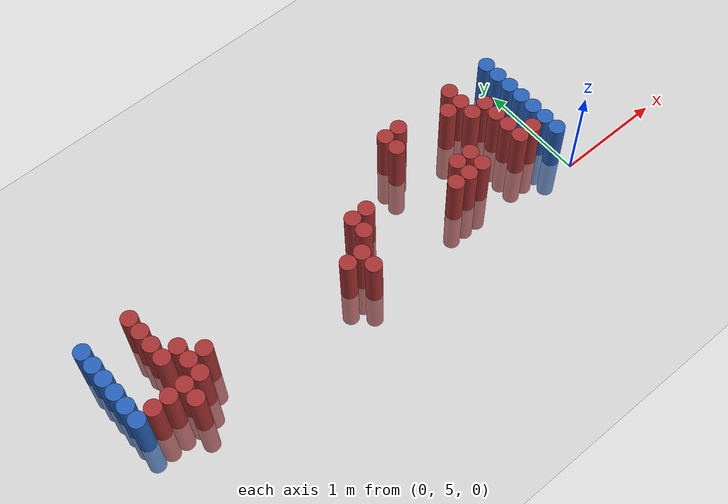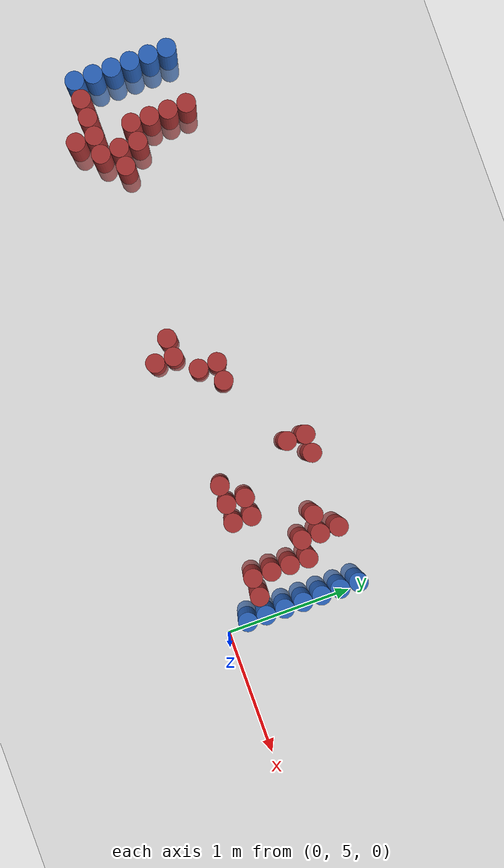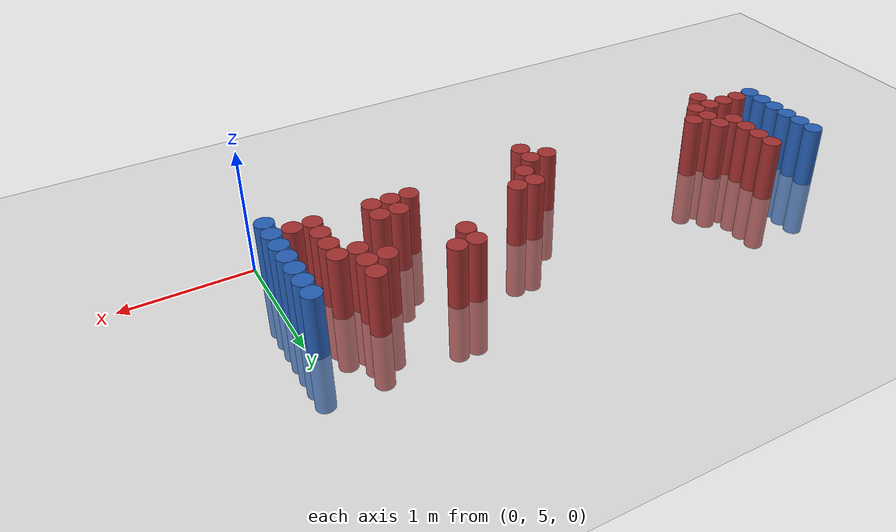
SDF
<sdf version="1.6">
 <world name="default">
  <model name="ground_plane">
   <static>1</static>
   <link name="link">
    <collision name="collision">
     <geometry><plane><normal>0 0 1</normal><size>100 100</size></plane></geometry>
     <surface><friction><ode><mu>100</mu><mu2>50</mu2></ode></friction></surface>
    </collision>
    <visual name="visual">
     <cast_shadows>0</cast_shadows>
     <geometry><plane><normal>0 0 1</normal><size>100 100</size></plane></geometry>
     <material>
      <script><uri>file://media/materials/scripts/gazebo.material</uri><name>Gazebo/Grey</name></script>
     </material>
    </visual>
   </link>
  </model>
  <model name="unit_cylinder_97">
   <static>1</static>
   <pose>-4.425000 5.325000 0.000000 0.000000 0.000000 0.000000</pose>
   <link name="link">
    <inertial>
     <mass>1</mass>
     <inertia><ixx>0.145833</ixx><ixy>0</ixy><ixz>0</ixz><iyy>0.145833</iyy><iyz>0</iyz><izz>0.125</izz></inertia>
    </inertial>
    <collision name="collision">
     <geometry><cylinder><radius>0.075000</radius><length>1</length></cylinder></geometry>
    </collision>
    <visual name="visual">
     <geometry><cylinder><radius>0.075000</radius><length>1</length></cylinder></geometry>
     <material>
      <ambient>0.152000 0.379000 0.720000 1</ambient>
      <diffuse>0.152000 0.379000 0.720000 1</diffuse>
     </material>
     <material>
      <script><name>Gazebo/Grey</name><uri>file://media/materials/scripts/gazebo.material</uri></script>
     </material>
    </visual>
   </link>
  </model>
  <model name="unit_cylinder_98">
   <static>1</static>
   <pose>-4.425000 5.475000 0.000000 0.000000 0.000000 0.000000</pose>
   <link name="link">
    <inertial>
     <mass>1</mass>
     <inertia><ixx>0.145833</ixx><ixy>0</ixy><ixz>0</ixz><iyy>0.145833</iyy><iyz>0</iyz><izz>0.125</izz></inertia>
    </inertial>
    <collision name="collision">
     <geometry><cylinder><radius>0.075000</radius><length>1</length></cylinder></geometry>
    </collision>
    <visual name="visual">
     <geometry><cylinder><radius>0.075000</radius><length>1</length></cylinder></geometry>
     <material>
      <ambient>0.152000 0.379000 0.720000 1</ambient>
      <diffuse>0.152000 0.379000 0.720000 1</diffuse>
     </material>
     <material>
      <script><name>Gazebo/Grey</name><uri>file://media/materials/scripts/gazebo.material</uri></script>
     </material>
    </visual>
   </link>
  </model>
  <model name="unit_cylinder_99">
   <static>1</static>
   <pose>-4.425000 5.625000 0.000000 0.000000 0.000000 0.000000</pose>
   <link name="link">
    <inertial>
     <mass>1</mass>
     <inertia><ixx>0.145833</ixx><ixy>0</ixy><ixz>0</ixz><iyy>0.145833</iyy><iyz>0</iyz><izz>0.125</izz></inertia>
    </inertial>
    <collision name="collision">
     <geometry><cylinder><radius>0.075000</radius><length>1</length></cylinder></geometry>
    </collision>
    <visual name="visual">
     <geometry><cylinder><radius>0.075000</radius><length>1</length></cylinder></geometry>
     <material>
      <ambient>0.152000 0.379000 0.720000 1</ambient>
      <diffuse>0.152000 0.379000 0.720000 1</diffuse>
     </material>
     <material>
      <script><name>Gazebo/Grey</name><uri>file://media/materials/scripts/gazebo.material</uri></script>
     </material>
    </visual>
   </link>
  </model>
  <model name="unit_cylinder_100">
   <static>1</static>
   <pose>-4.425000 5.775000 0.000000 0.000000 0.000000 0.000000</pose>
   <link name="link">
    <inertial>
     <mass>1</mass>
     <inertia><ixx>0.145833</ixx><ixy>0</ixy><ixz>0</ixz><iyy>0.145833</iyy><iyz>0</iyz><izz>0.125</izz></inertia>
    </inertial>
    <collision name="collision">
     <geometry><cylinder><radius>0.075000</radius><length>1</length></cylinder></geometry>
    </collision>
    <visual name="visual">
     <geometry><cylinder><radius>0.075000</radius><length>1</length></cylinder></geometry>
     <material>
      <ambient>0.152000 0.379000 0.720000 1</ambient>
      <diffuse>0.152000 0.379000 0.720000 1</diffuse>
     </material>
     <material>
      <script><name>Gazebo/Grey</name><uri>file://media/materials/scripts/gazebo.material</uri></script>
     </material>
    </visual>
   </link>
  </model>
  <model name="unit_cylinder_101">
   <static>1</static>
   <pose>-4.425000 5.925000 0.000000 0.000000 0.000000 0.000000</pose>
   <link name="link">
    <inertial>
     <mass>1</mass>
     <inertia><ixx>0.145833</ixx><ixy>0</ixy><ixz>0</ixz><iyy>0.145833</iyy><iyz>0</iyz><izz>0.125</izz></inertia>
    </inertial>
    <collision name="collision">
     <geometry><cylinder><radius>0.075000</radius><length>1</length></cylinder></geometry>
    </collision>
    <visual name="visual">
     <geometry><cylinder><radius>0.075000</radius><length>1</length></cylinder></geometry>
     <material>
      <ambient>0.152000 0.379000 0.720000 1</ambient>
      <diffuse>0.152000 0.379000 0.720000 1</diffuse>
     </material>
     <material>
      <script><name>Gazebo/Grey</name><uri>file://media/materials/scripts/gazebo.material</uri></script>
     </material>
    </visual>
   </link>
  </model>
  <model name="unit_cylinder_102">
   <static>1</static>
   <pose>-4.425000 6.075000 0.000000 0.000000 0.000000 0.000000</pose>
   <link name="link">
    <inertial>
     <mass>1</mass>
     <inertia><ixx>0.145833</ixx><ixy>0</ixy><ixz>0</ixz><iyy>0.145833</iyy><iyz>0</iyz><izz>0.125</izz></inertia>
    </inertial>
    <collision name="collision">
     <geometry><cylinder><radius>0.075000</radius><length>1</length></cylinder></geometry>
    </collision>
    <visual name="visual">
     <geometry><cylinder><radius>0.075000</radius><length>1</length></cylinder></geometry>
     <material>
      <ambient>0.152000 0.379000 0.720000 1</ambient>
      <diffuse>0.152000 0.379000 0.720000 1</diffuse>
     </material>
     <material>
      <script><name>Gazebo/Grey</name><uri>file://media/materials/scripts/gazebo.material</uri></script>
     </material>
    </visual>
   </link>
  </model>
  <model name="unit_cylinder_126">
   <static>1</static>
   <pose>-4.275000 5.325000 0.000000 0.000000 0.000000 0.000000</pose>
   <link name="link">
    <inertial>
     <mass>1</mass>
     <inertia><ixx>0.145833</ixx><ixy>0</ixy><ixz>0</ixz><iyy>0.145833</iyy><iyz>0</iyz><izz>0.125</izz></inertia>
    </inertial>
    <collision name="collision">
     <geometry><cylinder><radius>0.075000</radius><length>1</length></cylinder></geometry>
    </collision>
    <visual name="visual">
     <geometry><cylinder><radius>0.075000</radius><length>1</length></cylinder></geometry>
     <material>
      <ambient>0.648000 0.192000 0.192000 1</ambient>
      <diffuse>0.648000 0.192000 0.192000 1</diffuse>
     </material>
     <material>
      <script><name>Gazebo/Grey</name><uri>file://media/materials/scripts/gazebo.material</uri></script>
     </material>
    </visual>
   </link>
  </model>
  <model name="unit_cylinder_141">
   <static>1</static>
   <pose>-4.125000 5.325000 0.000000 0.000000 0.000000 0.000000</pose>
   <link name="link">
    <inertial>
     <mass>1</mass>
     <inertia><ixx>0.145833</ixx><ixy>0</ixy><ixz>0</ixz><iyy>0.145833</iyy><iyz>0</iyz><izz>0.125</izz></inertia>
    </inertial>
    <collision name="collision">
     <geometry><cylinder><radius>0.075000</radius><length>1</length></cylinder></geometry>
    </collision>
    <visual name="visual">
     <geometry><cylinder><radius>0.075000</radius><length>1</length></cylinder></geometry>
     <material>
      <ambient>0.648000 0.192000 0.192000 1</ambient>
      <diffuse>0.648000 0.192000 0.192000 1</diffuse>
     </material>
     <material>
      <script><name>Gazebo/Grey</name><uri>file://media/materials/scripts/gazebo.material</uri></script>
     </material>
    </visual>
   </link>
  </model>
  <model name="unit_cylinder_149">
   <static>1</static>
   <pose>-3.975000 5.175000 0.000000 0.000000 0.000000 0.000000</pose>
   <link name="link">
    <inertial>
     <mass>1</mass>
     <inertia><ixx>0.145833</ixx><ixy>0</ixy><ixz>0</ixz><iyy>0.145833</iyy><iyz>0</iyz><izz>0.125</izz></inertia>
    </inertial>
    <collision name="collision">
     <geometry><cylinder><radius>0.075000</radius><length>1</length></cylinder></geometry>
    </collision>
    <visual name="visual">
     <geometry><cylinder><radius>0.075000</radius><length>1</length></cylinder></geometry>
     <material>
      <ambient>0.648000 0.192000 0.192000 1</ambient>
      <diffuse>0.648000 0.192000 0.192000 1</diffuse>
     </material>
     <material>
      <script><name>Gazebo/Grey</name><uri>file://media/materials/scripts/gazebo.material</uri></script>
     </material>
    </visual>
   </link>
  </model>
  <model name="unit_cylinder_150">
   <static>1</static>
   <pose>-3.975000 5.325000 0.000000 0.000000 0.000000 0.000000</pose>
   <link name="link">
    <inertial>
     <mass>1</mass>
     <inertia><ixx>0.145833</ixx><ixy>0</ixy><ixz>0</ixz><iyy>0.145833</iyy><iyz>0</iyz><izz>0.125</izz></inertia>
    </inertial>
    <collision name="collision">
     <geometry><cylinder><radius>0.075000</radius><length>1</length></cylinder></geometry>
    </collision>
    <visual name="visual">
     <geometry><cylinder><radius>0.075000</radius><length>1</length></cylinder></geometry>
     <material>
      <ambient>0.648000 0.192000 0.192000 1</ambient>
      <diffuse>0.648000 0.192000 0.192000 1</diffuse>
     </material>
     <material>
      <script><name>Gazebo/Grey</name><uri>file://media/materials/scripts/gazebo.material</uri></script>
     </material>
    </visual>
   </link>
  </model>
  <model name="unit_cylinder_151">
   <static>1</static>
   <pose>-3.975000 5.625000 0.000000 0.000000 0.000000 0.000000</pose>
   <link name="link">
    <inertial>
     <mass>1</mass>
     <inertia><ixx>0.145833</ixx><ixy>0</ixy><ixz>0</ixz><iyy>0.145833</iyy><iyz>0</iyz><izz>0.125</izz></inertia>
    </inertial>
    <collision name="collision">
     <geometry><cylinder><radius>0.075000</radius><length>1</length></cylinder></geometry>
    </collision>
    <visual name="visual">
     <geometry><cylinder><radius>0.075000</radius><length>1</length></cylinder></geometry>
     <material>
      <ambient>0.648000 0.192000 0.192000 1</ambient>
      <diffuse>0.648000 0.192000 0.192000 1</diffuse>
     </material>
     <material>
      <script><name>Gazebo/Grey</name><uri>file://media/materials/scripts/gazebo.material</uri></script>
     </material>
    </visual>
   </link>
  </model>
  <model name="unit_cylinder_152">
   <static>1</static>
   <pose>-3.975000 5.775000 0.000000 0.000000 0.000000 0.000000</pose>
   <link name="link">
    <inertial>
     <mass>1</mass>
     <inertia><ixx>0.145833</ixx><ixy>0</ixy><ixz>0</ixz><iyy>0.145833</iyy><iyz>0</iyz><izz>0.125</izz></inertia>
    </inertial>
    <collision name="collision">
     <geometry><cylinder><radius>0.075000</radius><length>1</length></cylinder></geometry>
    </collision>
    <visual name="visual">
     <geometry><cylinder><radius>0.075000</radius><length>1</length></cylinder></geometry>
     <material>
      <ambient>0.648000 0.192000 0.192000 1</ambient>
      <diffuse>0.648000 0.192000 0.192000 1</diffuse>
     </material>
     <material>
      <script><name>Gazebo/Grey</name><uri>file://media/materials/scripts/gazebo.material</uri></script>
     </material>
    </visual>
   </link>
  </model>
  <model name="unit_cylinder_153">
   <static>1</static>
   <pose>-3.975000 5.925000 0.000000 0.000000 0.000000 0.000000</pose>
   <link name="link">
    <inertial>
     <mass>1</mass>
     <inertia><ixx>0.145833</ixx><ixy>0</ixy><ixz>0</ixz><iyy>0.145833</iyy><iyz>0</iyz><izz>0.125</izz></inertia>
    </inertial>
    <collision name="collision">
     <geometry><cylinder><radius>0.075000</radius><length>1</length></cylinder></geometry>
    </collision>
    <visual name="visual">
     <geometry><cylinder><radius>0.075000</radius><length>1</length></cylinder></geometry>
     <material>
      <ambient>0.648000 0.192000 0.192000 1</ambient>
      <diffuse>0.648000 0.192000 0.192000 1</diffuse>
     </material>
     <material>
      <script><name>Gazebo/Grey</name><uri>file://media/materials/scripts/gazebo.material</uri></script>
     </material>
    </visual>
   </link>
  </model>
  <model name="unit_cylinder_154">
   <static>1</static>
   <pose>-3.975000 6.075000 0.000000 0.000000 0.000000 0.000000</pose>
   <link name="link">
    <inertial>
     <mass>1</mass>
     <inertia><ixx>0.145833</ixx><ixy>0</ixy><ixz>0</ixz><iyy>0.145833</iyy><iyz>0</iyz><izz>0.125</izz></inertia>
    </inertial>
    <collision name="collision">
     <geometry><cylinder><radius>0.075000</radius><length>1</length></cylinder></geometry>
    </collision>
    <visual name="visual">
     <geometry><cylinder><radius>0.075000</radius><length>1</length></cylinder></geometry>
     <material>
      <ambient>0.648000 0.192000 0.192000 1</ambient>
      <diffuse>0.648000 0.192000 0.192000 1</diffuse>
     </material>
     <material>
      <script><name>Gazebo/Grey</name><uri>file://media/materials/scripts/gazebo.material</uri></script>
     </material>
    </visual>
   </link>
  </model>
  <model name="unit_cylinder_162">
   <static>1</static>
   <pose>-3.825000 5.325000 0.000000 0.000000 0.000000 0.000000</pose>
   <link name="link">
    <inertial>
     <mass>1</mass>
     <inertia><ixx>0.145833</ixx><ixy>0</ixy><ixz>0</ixz><iyy>0.145833</iyy><iyz>0</iyz><izz>0.125</izz></inertia>
    </inertial>
    <collision name="collision">
     <geometry><cylinder><radius>0.075000</radius><length>1</length></cylinder></geometry>
    </collision>
    <visual name="visual">
     <geometry><cylinder><radius>0.075000</radius><length>1</length></cylinder></geometry>
     <material>
      <ambient>0.648000 0.192000 0.192000 1</ambient>
      <diffuse>0.648000 0.192000 0.192000 1</diffuse>
     </material>
     <material>
      <script><name>Gazebo/Grey</name><uri>file://media/materials/scripts/gazebo.material</uri></script>
     </material>
    </visual>
   </link>
  </model>
  <model name="unit_cylinder_163">
   <static>1</static>
   <pose>-3.825000 5.475000 0.000000 0.000000 0.000000 0.000000</pose>
   <link name="link">
    <inertial>
     <mass>1</mass>
     <inertia><ixx>0.145833</ixx><ixy>0</ixy><ixz>0</ixz><iyy>0.145833</iyy><iyz>0</iyz><izz>0.125</izz></inertia>
    </inertial>
    <collision name="collision">
     <geometry><cylinder><radius>0.075000</radius><length>1</length></cylinder></geometry>
    </collision>
    <visual name="visual">
     <geometry><cylinder><radius>0.075000</radius><length>1</length></cylinder></geometry>
     <material>
      <ambient>0.648000 0.192000 0.192000 1</ambient>
      <diffuse>0.648000 0.192000 0.192000 1</diffuse>
     </material>
     <material>
      <script><name>Gazebo/Grey</name><uri>file://media/materials/scripts/gazebo.material</uri></script>
     </material>
    </visual>
   </link>
  </model>
  <model name="unit_cylinder_164">
   <static>1</static>
   <pose>-3.825000 5.625000 0.000000 0.000000 0.000000 0.000000</pose>
   <link name="link">
    <inertial>
     <mass>1</mass>
     <inertia><ixx>0.145833</ixx><ixy>0</ixy><ixz>0</ixz><iyy>0.145833</iyy><iyz>0</iyz><izz>0.125</izz></inertia>
    </inertial>
    <collision name="collision">
     <geometry><cylinder><radius>0.075000</radius><length>1</length></cylinder></geometry>
    </collision>
    <visual name="visual">
     <geometry><cylinder><radius>0.075000</radius><length>1</length></cylinder></geometry>
     <material>
      <ambient>0.648000 0.192000 0.192000 1</ambient>
      <diffuse>0.648000 0.192000 0.192000 1</diffuse>
     </material>
     <material>
      <script><name>Gazebo/Grey</name><uri>file://media/materials/scripts/gazebo.material</uri></script>
     </material>
    </visual>
   </link>
  </model>
  <model name="unit_cylinder_169">
   <static>1</static>
   <pose>-3.675000 5.475000 0.000000 0.000000 0.000000 0.000000</pose>
   <link name="link">
    <inertial>
     <mass>1</mass>
     <inertia><ixx>0.145833</ixx><ixy>0</ixy><ixz>0</ixz><iyy>0.145833</iyy><iyz>0</iyz><izz>0.125</izz></inertia>
    </inertial>
    <collision name="collision">
     <geometry><cylinder><radius>0.075000</radius><length>1</length></cylinder></geometry>
    </collision>
    <visual name="visual">
     <geometry><cylinder><radius>0.075000</radius><length>1</length></cylinder></geometry>
     <material>
      <ambient>0.648000 0.192000 0.192000 1</ambient>
      <diffuse>0.648000 0.192000 0.192000 1</diffuse>
     </material>
     <material>
      <script><name>Gazebo/Grey</name><uri>file://media/materials/scripts/gazebo.material</uri></script>
     </material>
    </visual>
   </link>
  </model>
  <model name="unit_cylinder_204">
   <static>1</static>
   <pose>-2.325000 5.325000 0.000000 0.000000 0.000000 0.000000</pose>
   <link name="link">
    <inertial>
     <mass>1</mass>
     <inertia><ixx>0.145833</ixx><ixy>0</ixy><ixz>0</ixz><iyy>0.145833</iyy><iyz>0</iyz><izz>0.125</izz></inertia>
    </inertial>
    <collision name="collision">
     <geometry><cylinder><radius>0.075000</radius><length>1</length></cylinder></geometry>
    </collision>
    <visual name="visual">
     <geometry><cylinder><radius>0.075000</radius><length>1</length></cylinder></geometry>
     <material>
      <ambient>0.648000 0.192000 0.192000 1</ambient>
      <diffuse>0.648000 0.192000 0.192000 1</diffuse>
     </material>
     <material>
      <script><name>Gazebo/Grey</name><uri>file://media/materials/scripts/gazebo.material</uri></script>
     </material>
    </visual>
   </link>
  </model>
  <model name="unit_cylinder_205">
   <static>1</static>
   <pose>-2.175000 5.175000 0.000000 0.000000 0.000000 0.000000</pose>
   <link name="link">
    <inertial>
     <mass>1</mass>
     <inertia><ixx>0.145833</ixx><ixy>0</ixy><ixz>0</ixz><iyy>0.145833</iyy><iyz>0</iyz><izz>0.125</izz></inertia>
    </inertial>
    <collision name="collision">
     <geometry><cylinder><radius>0.075000</radius><length>1</length></cylinder></geometry>
    </collision>
    <visual name="visual">
     <geometry><cylinder><radius>0.075000</radius><length>1</length></cylinder></geometry>
     <material>
      <ambient>0.648000 0.192000 0.192000 1</ambient>
      <diffuse>0.648000 0.192000 0.192000 1</diffuse>
     </material>
     <material>
      <script><name>Gazebo/Grey</name><uri>file://media/materials/scripts/gazebo.material</uri></script>
     </material>
    </visual>
   </link>
  </model>
  <model name="unit_cylinder_206">
   <static>1</static>
   <pose>-2.175000 5.325000 0.000000 0.000000 0.000000 0.000000</pose>
   <link name="link">
    <inertial>
     <mass>1</mass>
     <inertia><ixx>0.145833</ixx><ixy>0</ixy><ixz>0</ixz><iyy>0.145833</iyy><iyz>0</iyz><izz>0.125</izz></inertia>
    </inertial>
    <collision name="collision">
     <geometry><cylinder><radius>0.075000</radius><length>1</length></cylinder></geometry>
    </collision>
    <visual name="visual">
     <geometry><cylinder><radius>0.075000</radius><length>1</length></cylinder></geometry>
     <material>
      <ambient>0.648000 0.192000 0.192000 1</ambient>
      <diffuse>0.648000 0.192000 0.192000 1</diffuse>
     </material>
     <material>
      <script><name>Gazebo/Grey</name><uri>file://media/materials/scripts/gazebo.material</uri></script>
     </material>
    </visual>
   </link>
  </model>
  <model name="unit_cylinder_208">
   <static>1</static>
   <pose>-2.025000 5.475000 0.000000 0.000000 0.000000 0.000000</pose>
   <link name="link">
    <inertial>
     <mass>1</mass>
     <inertia><ixx>0.145833</ixx><ixy>0</ixy><ixz>0</ixz><iyy>0.145833</iyy><iyz>0</iyz><izz>0.125</izz></inertia>
    </inertial>
    <collision name="collision">
     <geometry><cylinder><radius>0.075000</radius><length>1</length></cylinder></geometry>
    </collision>
    <visual name="visual">
     <geometry><cylinder><radius>0.075000</radius><length>1</length></cylinder></geometry>
     <material>
      <ambient>0.648000 0.192000 0.192000 1</ambient>
      <diffuse>0.648000 0.192000 0.192000 1</diffuse>
     </material>
     <material>
      <script><name>Gazebo/Grey</name><uri>file://media/materials/scripts/gazebo.material</uri></script>
     </material>
    </visual>
   </link>
  </model>
  <model name="unit_cylinder_209">
   <static>1</static>
   <pose>-2.025000 5.625000 0.000000 0.000000 0.000000 0.000000</pose>
   <link name="link">
    <inertial>
     <mass>1</mass>
     <inertia><ixx>0.145833</ixx><ixy>0</ixy><ixz>0</ixz><iyy>0.145833</iyy><iyz>0</iyz><izz>0.125</izz></inertia>
    </inertial>
    <collision name="collision">
     <geometry><cylinder><radius>0.075000</radius><length>1</length></cylinder></geometry>
    </collision>
    <visual name="visual">
     <geometry><cylinder><radius>0.075000</radius><length>1</length></cylinder></geometry>
     <material>
      <ambient>0.648000 0.192000 0.192000 1</ambient>
      <diffuse>0.648000 0.192000 0.192000 1</diffuse>
     </material>
     <material>
      <script><name>Gazebo/Grey</name><uri>file://media/materials/scripts/gazebo.material</uri></script>
     </material>
    </visual>
   </link>
  </model>
  <model name="unit_cylinder_212">
   <static>1</static>
   <pose>-1.875000 5.625000 0.000000 0.000000 0.000000 0.000000</pose>
   <link name="link">
    <inertial>
     <mass>1</mass>
     <inertia><ixx>0.145833</ixx><ixy>0</ixy><ixz>0</ixz><iyy>0.145833</iyy><iyz>0</iyz><izz>0.125</izz></inertia>
    </inertial>
    <collision name="collision">
     <geometry><cylinder><radius>0.075000</radius><length>1</length></cylinder></geometry>
    </collision>
    <visual name="visual">
     <geometry><cylinder><radius>0.075000</radius><length>1</length></cylinder></geometry>
     <material>
      <ambient>0.648000 0.192000 0.192000 1</ambient>
      <diffuse>0.648000 0.192000 0.192000 1</diffuse>
     </material>
     <material>
      <script><name>Gazebo/Grey</name><uri>file://media/materials/scripts/gazebo.material</uri></script>
     </material>
    </visual>
   </link>
  </model>
  <model name="unit_cylinder_217">
   <static>1</static>
   <pose>-1.275000 5.925000 0.000000 0.000000 0.000000 0.000000</pose>
   <link name="link">
    <inertial>
     <mass>1</mass>
     <inertia><ixx>0.145833</ixx><ixy>0</ixy><ixz>0</ixz><iyy>0.145833</iyy><iyz>0</iyz><izz>0.125</izz></inertia>
    </inertial>
    <collision name="collision">
     <geometry><cylinder><radius>0.075000</radius><length>1</length></cylinder></geometry>
    </collision>
    <visual name="visual">
     <geometry><cylinder><radius>0.075000</radius><length>1</length></cylinder></geometry>
     <material>
      <ambient>0.648000 0.192000 0.192000 1</ambient>
      <diffuse>0.648000 0.192000 0.192000 1</diffuse>
     </material>
     <material>
      <script><name>Gazebo/Grey</name><uri>file://media/materials/scripts/gazebo.material</uri></script>
     </material>
    </visual>
   </link>
  </model>
  <model name="unit_cylinder_218">
   <static>1</static>
   <pose>-1.275000 6.075000 0.000000 0.000000 0.000000 0.000000</pose>
   <link name="link">
    <inertial>
     <mass>1</mass>
     <inertia><ixx>0.145833</ixx><ixy>0</ixy><ixz>0</ixz><iyy>0.145833</iyy><iyz>0</iyz><izz>0.125</izz></inertia>
    </inertial>
    <collision name="collision">
     <geometry><cylinder><radius>0.075000</radius><length>1</length></cylinder></geometry>
    </collision>
    <visual name="visual">
     <geometry><cylinder><radius>0.075000</radius><length>1</length></cylinder></geometry>
     <material>
      <ambient>0.648000 0.192000 0.192000 1</ambient>
      <diffuse>0.648000 0.192000 0.192000 1</diffuse>
     </material>
     <material>
      <script><name>Gazebo/Grey</name><uri>file://media/materials/scripts/gazebo.material</uri></script>
     </material>
    </visual>
   </link>
  </model>
  <model name="unit_cylinder_220">
   <static>1</static>
   <pose>-1.125000 5.325000 0.000000 0.000000 0.000000 0.000000</pose>
   <link name="link">
    <inertial>
     <mass>1</mass>
     <inertia><ixx>0.145833</ixx><ixy>0</ixy><ixz>0</ixz><iyy>0.145833</iyy><iyz>0</iyz><izz>0.125</izz></inertia>
    </inertial>
    <collision name="collision">
     <geometry><cylinder><radius>0.075000</radius><length>1</length></cylinder></geometry>
    </collision>
    <visual name="visual">
     <geometry><cylinder><radius>0.075000</radius><length>1</length></cylinder></geometry>
     <material>
      <ambient>0.648000 0.192000 0.192000 1</ambient>
      <diffuse>0.648000 0.192000 0.192000 1</diffuse>
     </material>
     <material>
      <script><name>Gazebo/Grey</name><uri>file://media/materials/scripts/gazebo.material</uri></script>
     </material>
    </visual>
   </link>
  </model>
  <model name="unit_cylinder_221">
   <static>1</static>
   <pose>-1.125000 6.075000 0.000000 0.000000 0.000000 0.000000</pose>
   <link name="link">
    <inertial>
     <mass>1</mass>
     <inertia><ixx>0.145833</ixx><ixy>0</ixy><ixz>0</ixz><iyy>0.145833</iyy><iyz>0</iyz><izz>0.125</izz></inertia>
    </inertial>
    <collision name="collision">
     <geometry><cylinder><radius>0.075000</radius><length>1</length></cylinder></geometry>
    </collision>
    <visual name="visual">
     <geometry><cylinder><radius>0.075000</radius><length>1</length></cylinder></geometry>
     <material>
      <ambient>0.648000 0.192000 0.192000 1</ambient>
      <diffuse>0.648000 0.192000 0.192000 1</diffuse>
     </material>
     <material>
      <script><name>Gazebo/Grey</name><uri>file://media/materials/scripts/gazebo.material</uri></script>
     </material>
    </visual>
   </link>
  </model>
  <model name="unit_cylinder_222">
   <static>1</static>
   <pose>-0.975000 5.325000 0.000000 0.000000 0.000000 0.000000</pose>
   <link name="link">
    <inertial>
     <mass>1</mass>
     <inertia><ixx>0.145833</ixx><ixy>0</ixy><ixz>0</ixz><iyy>0.145833</iyy><iyz>0</iyz><izz>0.125</izz></inertia>
    </inertial>
    <collision name="collision">
     <geometry><cylinder><radius>0.075000</radius><length>1</length></cylinder></geometry>
    </collision>
    <visual name="visual">
     <geometry><cylinder><radius>0.075000</radius><length>1</length></cylinder></geometry>
     <material>
      <ambient>0.648000 0.192000 0.192000 1</ambient>
      <diffuse>0.648000 0.192000 0.192000 1</diffuse>
     </material>
     <material>
      <script><name>Gazebo/Grey</name><uri>file://media/materials/scripts/gazebo.material</uri></script>
     </material>
    </visual>
   </link>
  </model>
  <model name="unit_cylinder_223">
   <static>1</static>
   <pose>-0.975000 5.475000 0.000000 0.000000 0.000000 0.000000</pose>
   <link name="link">
    <inertial>
     <mass>1</mass>
     <inertia><ixx>0.145833</ixx><ixy>0</ixy><ixz>0</ixz><iyy>0.145833</iyy><iyz>0</iyz><izz>0.125</izz></inertia>
    </inertial>
    <collision name="collision">
     <geometry><cylinder><radius>0.075000</radius><length>1</length></cylinder></geometry>
    </collision>
    <visual name="visual">
     <geometry><cylinder><radius>0.075000</radius><length>1</length></cylinder></geometry>
     <material>
      <ambient>0.648000 0.192000 0.192000 1</ambient>
      <diffuse>0.648000 0.192000 0.192000 1</diffuse>
     </material>
     <material>
      <script><name>Gazebo/Grey</name><uri>file://media/materials/scripts/gazebo.material</uri></script>
     </material>
    </visual>
   </link>
  </model>
  <model name="unit_cylinder_226">
   <static>1</static>
   <pose>-0.825000 5.325000 0.000000 0.000000 0.000000 0.000000</pose>
   <link name="link">
    <inertial>
     <mass>1</mass>
     <inertia><ixx>0.145833</ixx><ixy>0</ixy><ixz>0</ixz><iyy>0.145833</iyy><iyz>0</iyz><izz>0.125</izz></inertia>
    </inertial>
    <collision name="collision">
     <geometry><cylinder><radius>0.075000</radius><length>1</length></cylinder></geometry>
    </collision>
    <visual name="visual">
     <geometry><cylinder><radius>0.075000</radius><length>1</length></cylinder></geometry>
     <material>
      <ambient>0.648000 0.192000 0.192000 1</ambient>
      <diffuse>0.648000 0.192000 0.192000 1</diffuse>
     </material>
     <material>
      <script><name>Gazebo/Grey</name><uri>file://media/materials/scripts/gazebo.material</uri></script>
     </material>
    </visual>
   </link>
  </model>
  <model name="unit_cylinder_227">
   <static>1</static>
   <pose>-0.825000 5.475000 0.000000 0.000000 0.000000 0.000000</pose>
   <link name="link">
    <inertial>
     <mass>1</mass>
     <inertia><ixx>0.145833</ixx><ixy>0</ixy><ixz>0</ixz><iyy>0.145833</iyy><iyz>0</iyz><izz>0.125</izz></inertia>
    </inertial>
    <collision name="collision">
     <geometry><cylinder><radius>0.075000</radius><length>1</length></cylinder></geometry>
    </collision>
    <visual name="visual">
     <geometry><cylinder><radius>0.075000</radius><length>1</length></cylinder></geometry>
     <material>
      <ambient>0.648000 0.192000 0.192000 1</ambient>
      <diffuse>0.648000 0.192000 0.192000 1</diffuse>
     </material>
     <material>
      <script><name>Gazebo/Grey</name><uri>file://media/materials/scripts/gazebo.material</uri></script>
     </material>
    </visual>
   </link>
  </model>
  <model name="unit_cylinder_231">
   <static>1</static>
   <pose>-0.675000 5.925000 0.000000 0.000000 0.000000 0.000000</pose>
   <link name="link">
    <inertial>
     <mass>1</mass>
     <inertia><ixx>0.145833</ixx><ixy>0</ixy><ixz>0</ixz><iyy>0.145833</iyy><iyz>0</iyz><izz>0.125</izz></inertia>
    </inertial>
    <collision name="collision">
     <geometry><cylinder><radius>0.075000</radius><length>1</length></cylinder></geometry>
    </collision>
    <visual name="visual">
     <geometry><cylinder><radius>0.075000</radius><length>1</length></cylinder></geometry>
     <material>
      <ambient>0.648000 0.192000 0.192000 1</ambient>
      <diffuse>0.648000 0.192000 0.192000 1</diffuse>
     </material>
     <material>
      <script><name>Gazebo/Grey</name><uri>file://media/materials/scripts/gazebo.material</uri></script>
     </material>
    </visual>
   </link>
  </model>
  <model name="unit_cylinder_235">
   <static>1</static>
   <pose>-0.525000 5.775000 0.000000 0.000000 0.000000 0.000000</pose>
   <link name="link">
    <inertial>
     <mass>1</mass>
     <inertia><ixx>0.145833</ixx><ixy>0</ixy><ixz>0</ixz><iyy>0.145833</iyy><iyz>0</iyz><izz>0.125</izz></inertia>
    </inertial>
    <collision name="collision">
     <geometry><cylinder><radius>0.075000</radius><length>1</length></cylinder></geometry>
    </collision>
    <visual name="visual">
     <geometry><cylinder><radius>0.075000</radius><length>1</length></cylinder></geometry>
     <material>
      <ambient>0.648000 0.192000 0.192000 1</ambient>
      <diffuse>0.648000 0.192000 0.192000 1</diffuse>
     </material>
     <material>
      <script><name>Gazebo/Grey</name><uri>file://media/materials/scripts/gazebo.material</uri></script>
     </material>
    </visual>
   </link>
  </model>
  <model name="unit_cylinder_236">
   <static>1</static>
   <pose>-0.525000 5.925000 0.000000 0.000000 0.000000 0.000000</pose>
   <link name="link">
    <inertial>
     <mass>1</mass>
     <inertia><ixx>0.145833</ixx><ixy>0</ixy><ixz>0</ixz><iyy>0.145833</iyy><iyz>0</iyz><izz>0.125</izz></inertia>
    </inertial>
    <collision name="collision">
     <geometry><cylinder><radius>0.075000</radius><length>1</length></cylinder></geometry>
    </collision>
    <visual name="visual">
     <geometry><cylinder><radius>0.075000</radius><length>1</length></cylinder></geometry>
     <material>
      <ambient>0.648000 0.192000 0.192000 1</ambient>
      <diffuse>0.648000 0.192000 0.192000 1</diffuse>
     </material>
     <material>
      <script><name>Gazebo/Grey</name><uri>file://media/materials/scripts/gazebo.material</uri></script>
     </material>
    </visual>
   </link>
  </model>
  <model name="unit_cylinder_237">
   <static>1</static>
   <pose>-0.525000 6.075000 0.000000 0.000000 0.000000 0.000000</pose>
   <link name="link">
    <inertial>
     <mass>1</mass>
     <inertia><ixx>0.145833</ixx><ixy>0</ixy><ixz>0</ixz><iyy>0.145833</iyy><iyz>0</iyz><izz>0.125</izz></inertia>
    </inertial>
    <collision name="collision">
     <geometry><cylinder><radius>0.075000</radius><length>1</length></cylinder></geometry>
    </collision>
    <visual name="visual">
     <geometry><cylinder><radius>0.075000</radius><length>1</length></cylinder></geometry>
     <material>
      <ambient>0.648000 0.192000 0.192000 1</ambient>
      <diffuse>0.648000 0.192000 0.192000 1</diffuse>
     </material>
     <material>
      <script><name>Gazebo/Grey</name><uri>file://media/materials/scripts/gazebo.material</uri></script>
     </material>
    </visual>
   </link>
  </model>
  <model name="unit_cylinder_242">
   <static>1</static>
   <pose>-0.375000 5.325000 0.000000 0.000000 0.000000 0.000000</pose>
   <link name="link">
    <inertial>
     <mass>1</mass>
     <inertia><ixx>0.145833</ixx><ixy>0</ixy><ixz>0</ixz><iyy>0.145833</iyy><iyz>0</iyz><izz>0.125</izz></inertia>
    </inertial>
    <collision name="collision">
     <geometry><cylinder><radius>0.075000</radius><length>1</length></cylinder></geometry>
    </collision>
    <visual name="visual">
     <geometry><cylinder><radius>0.075000</radius><length>1</length></cylinder></geometry>
     <material>
      <ambient>0.648000 0.192000 0.192000 1</ambient>
      <diffuse>0.648000 0.192000 0.192000 1</diffuse>
     </material>
     <material>
      <script><name>Gazebo/Grey</name><uri>file://media/materials/scripts/gazebo.material</uri></script>
     </material>
    </visual>
   </link>
  </model>
  <model name="unit_cylinder_243">
   <static>1</static>
   <pose>-0.375000 5.475000 0.000000 0.000000 0.000000 0.000000</pose>
   <link name="link">
    <inertial>
     <mass>1</mass>
     <inertia><ixx>0.145833</ixx><ixy>0</ixy><ixz>0</ixz><iyy>0.145833</iyy><iyz>0</iyz><izz>0.125</izz></inertia>
    </inertial>
    <collision name="collision">
     <geometry><cylinder><radius>0.075000</radius><length>1</length></cylinder></geometry>
    </collision>
    <visual name="visual">
     <geometry><cylinder><radius>0.075000</radius><length>1</length></cylinder></geometry>
     <material>
      <ambient>0.648000 0.192000 0.192000 1</ambient>
      <diffuse>0.648000 0.192000 0.192000 1</diffuse>
     </material>
     <material>
      <script><name>Gazebo/Grey</name><uri>file://media/materials/scripts/gazebo.material</uri></script>
     </material>
    </visual>
   </link>
  </model>
  <model name="unit_cylinder_244">
   <static>1</static>
   <pose>-0.375000 5.625000 0.000000 0.000000 0.000000 0.000000</pose>
   <link name="link">
    <inertial>
     <mass>1</mass>
     <inertia><ixx>0.145833</ixx><ixy>0</ixy><ixz>0</ixz><iyy>0.145833</iyy><iyz>0</iyz><izz>0.125</izz></inertia>
    </inertial>
    <collision name="collision">
     <geometry><cylinder><radius>0.075000</radius><length>1</length></cylinder></geometry>
    </collision>
    <visual name="visual">
     <geometry><cylinder><radius>0.075000</radius><length>1</length></cylinder></geometry>
     <material>
      <ambient>0.648000 0.192000 0.192000 1</ambient>
      <diffuse>0.648000 0.192000 0.192000 1</diffuse>
     </material>
     <material>
      <script><name>Gazebo/Grey</name><uri>file://media/materials/scripts/gazebo.material</uri></script>
     </material>
    </visual>
   </link>
  </model>
  <model name="unit_cylinder_245">
   <static>1</static>
   <pose>-0.375000 5.775000 0.000000 0.000000 0.000000 0.000000</pose>
   <link name="link">
    <inertial>
     <mass>1</mass>
     <inertia><ixx>0.145833</ixx><ixy>0</ixy><ixz>0</ixz><iyy>0.145833</iyy><iyz>0</iyz><izz>0.125</izz></inertia>
    </inertial>
    <collision name="collision">
     <geometry><cylinder><radius>0.075000</radius><length>1</length></cylinder></geometry>
    </collision>
    <visual name="visual">
     <geometry><cylinder><radius>0.075000</radius><length>1</length></cylinder></geometry>
     <material>
      <ambient>0.648000 0.192000 0.192000 1</ambient>
      <diffuse>0.648000 0.192000 0.192000 1</diffuse>
     </material>
     <material>
      <script><name>Gazebo/Grey</name><uri>file://media/materials/scripts/gazebo.material</uri></script>
     </material>
    </visual>
   </link>
  </model>
  <model name="unit_cylinder_247">
   <static>1</static>
   <pose>-0.225000 5.325000 0.000000 0.000000 0.000000 0.000000</pose>
   <link name="link">
    <inertial>
     <mass>1</mass>
     <inertia><ixx>0.145833</ixx><ixy>0</ixy><ixz>0</ixz><iyy>0.145833</iyy><iyz>0</iyz><izz>0.125</izz></inertia>
    </inertial>
    <collision name="collision">
     <geometry><cylinder><radius>0.075000</radius><length>1</length></cylinder></geometry>
    </collision>
    <visual name="visual">
     <geometry><cylinder><radius>0.075000</radius><length>1</length></cylinder></geometry>
     <material>
      <ambient>0.648000 0.192000 0.192000 1</ambient>
      <diffuse>0.648000 0.192000 0.192000 1</diffuse>
     </material>
     <material>
      <script><name>Gazebo/Grey</name><uri>file://media/materials/scripts/gazebo.material</uri></script>
     </material>
    </visual>
   </link>
  </model>
  <model name="unit_cylinder_260">
   <static>1</static>
   <pose>-0.075000 5.175000 0.000000 0.000000 0.000000 0.000000</pose>
   <link name="link">
    <inertial>
     <mass>1</mass>
     <inertia><ixx>0.145833</ixx><ixy>0</ixy><ixz>0</ixz><iyy>0.145833</iyy><iyz>0</iyz><izz>0.125</izz></inertia>
    </inertial>
    <collision name="collision">
     <geometry><cylinder><radius>0.075000</radius><length>1</length></cylinder></geometry>
    </collision>
    <visual name="visual">
     <geometry><cylinder><radius>0.075000</radius><length>1</length></cylinder></geometry>
     <material>
      <ambient>0.152000 0.379000 0.720000 1</ambient>
      <diffuse>0.152000 0.379000 0.720000 1</diffuse>
     </material>
     <material>
      <script><name>Gazebo/Grey</name><uri>file://media/materials/scripts/gazebo.material</uri></script>
     </material>
    </visual>
   </link>
  </model>
  <model name="unit_cylinder_261">
   <static>1</static>
   <pose>-0.075000 5.325000 0.000000 0.000000 0.000000 0.000000</pose>
   <link name="link">
    <inertial>
     <mass>1</mass>
     <inertia><ixx>0.145833</ixx><ixy>0</ixy><ixz>0</ixz><iyy>0.145833</iyy><iyz>0</iyz><izz>0.125</izz></inertia>
    </inertial>
    <collision name="collision">
     <geometry><cylinder><radius>0.075000</radius><length>1</length></cylinder></geometry>
    </collision>
    <visual name="visual">
     <geometry><cylinder><radius>0.075000</radius><length>1</length></cylinder></geometry>
     <material>
      <ambient>0.152000 0.379000 0.720000 1</ambient>
      <diffuse>0.152000 0.379000 0.720000 1</diffuse>
     </material>
     <material>
      <script><name>Gazebo/Grey</name><uri>file://media/materials/scripts/gazebo.material</uri></script>
     </material>
    </visual>
   </link>
  </model>
  <model name="unit_cylinder_262">
   <static>1</static>
   <pose>-0.075000 5.475000 0.000000 0.000000 0.000000 0.000000</pose>
   <link name="link">
    <inertial>
     <mass>1</mass>
     <inertia><ixx>0.145833</ixx><ixy>0</ixy><ixz>0</ixz><iyy>0.145833</iyy><iyz>0</iyz><izz>0.125</izz></inertia>
    </inertial>
    <collision name="collision">
     <geometry><cylinder><radius>0.075000</radius><length>1</length></cylinder></geometry>
    </collision>
    <visual name="visual">
     <geometry><cylinder><radius>0.075000</radius><length>1</length></cylinder></geometry>
     <material>
      <ambient>0.152000 0.379000 0.720000 1</ambient>
      <diffuse>0.152000 0.379000 0.720000 1</diffuse>
     </material>
     <material>
      <script><name>Gazebo/Grey</name><uri>file://media/materials/scripts/gazebo.material</uri></script>
     </material>
    </visual>
   </link>
  </model>
  <model name="unit_cylinder_263">
   <static>1</static>
   <pose>-0.075000 5.625000 0.000000 0.000000 0.000000 0.000000</pose>
   <link name="link">
    <inertial>
     <mass>1</mass>
     <inertia><ixx>0.145833</ixx><ixy>0</ixy><ixz>0</ixz><iyy>0.145833</iyy><iyz>0</iyz><izz>0.125</izz></inertia>
    </inertial>
    <collision name="collision">
     <geometry><cylinder><radius>0.075000</radius><length>1</length></cylinder></geometry>
    </collision>
    <visual name="visual">
     <geometry><cylinder><radius>0.075000</radius><length>1</length></cylinder></geometry>
     <material>
      <ambient>0.152000 0.379000 0.720000 1</ambient>
      <diffuse>0.152000 0.379000 0.720000 1</diffuse>
     </material>
     <material>
      <script><name>Gazebo/Grey</name><uri>file://media/materials/scripts/gazebo.material</uri></script>
     </material>
    </visual>
   </link>
  </model>
  <model name="unit_cylinder_264">
   <static>1</static>
   <pose>-0.075000 5.775000 0.000000 0.000000 0.000000 0.000000</pose>
   <link name="link">
    <inertial>
     <mass>1</mass>
     <inertia><ixx>0.145833</ixx><ixy>0</ixy><ixz>0</ixz><iyy>0.145833</iyy><iyz>0</iyz><izz>0.125</izz></inertia>
    </inertial>
    <collision name="collision">
     <geometry><cylinder><radius>0.075000</radius><length>1</length></cylinder></geometry>
    </collision>
    <visual name="visual">
     <geometry><cylinder><radius>0.075000</radius><length>1</length></cylinder></geometry>
     <material>
      <ambient>0.152000 0.379000 0.720000 1</ambient>
      <diffuse>0.152000 0.379000 0.720000 1</diffuse>
     </material>
     <material>
      <script><name>Gazebo/Grey</name><uri>file://media/materials/scripts/gazebo.material</uri></script>
     </material>
    </visual>
   </link>
  </model>
  <model name="unit_cylinder_265">
   <static>1</static>
   <pose>-0.075000 5.925000 0.000000 0.000000 0.000000 0.000000</pose>
   <link name="link">
    <inertial>
     <mass>1</mass>
     <inertia><ixx>0.145833</ixx><ixy>0</ixy><ixz>0</ixz><iyy>0.145833</iyy><iyz>0</iyz><izz>0.125</izz></inertia>
    </inertial>
    <collision name="collision">
     <geometry><cylinder><radius>0.075000</radius><length>1</length></cylinder></geometry>
    </collision>
    <visual name="visual">
     <geometry><cylinder><radius>0.075000</radius><length>1</length></cylinder></geometry>
     <material>
      <ambient>0.152000 0.379000 0.720000 1</ambient>
      <diffuse>0.152000 0.379000 0.720000 1</diffuse>
     </material>
     <material>
      <script><name>Gazebo/Grey</name><uri>file://media/materials/scripts/gazebo.material</uri></script>
     </material>
    </visual>
   </link>
  </model>
  <model name="unit_cylinder_266">
   <static>1</static>
   <pose>-0.075000 6.075000 0.000000 0.000000 0.000000 0.000000</pose>
   <link name="link">
    <inertial>
     <mass>1</mass>
     <inertia><ixx>0.145833</ixx><ixy>0</ixy><ixz>0</ixz><iyy>0.145833</iyy><iyz>0</iyz><izz>0.125</izz></inertia>
    </inertial>
    <collision name="collision">
     <geometry><cylinder><radius>0.075000</radius><length>1</length></cylinder></geometry>
    </collision>
    <visual name="visual">
     <geometry><cylinder><radius>0.075000</radius><length>1</length></cylinder></geometry>
     <material>
      <ambient>0.152000 0.379000 0.720000 1</ambient>
      <diffuse>0.152000 0.379000 0.720000 1</diffuse>
     </material>
     <material>
      <script><name>Gazebo/Grey</name><uri>file://media/materials/scripts/gazebo.material</uri></script>
     </material>
    </visual>
   </link>
  </model>
 </world>
</sdf>
